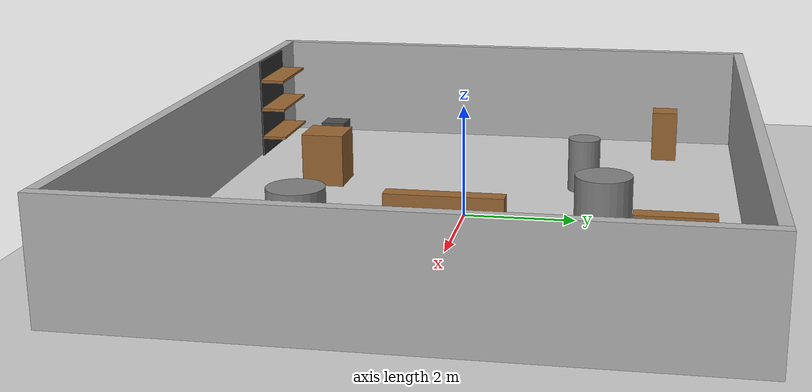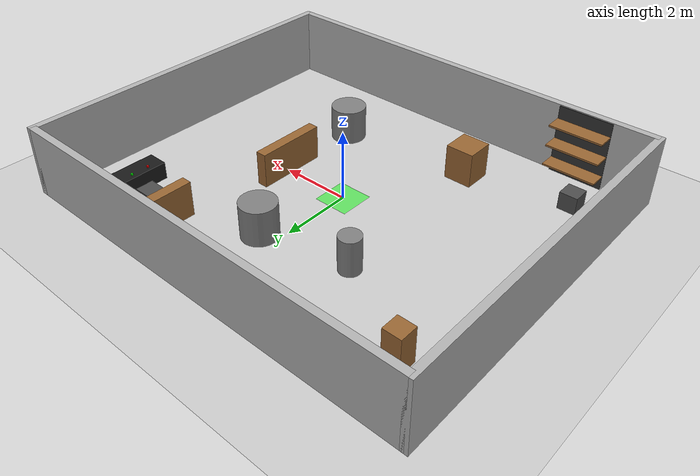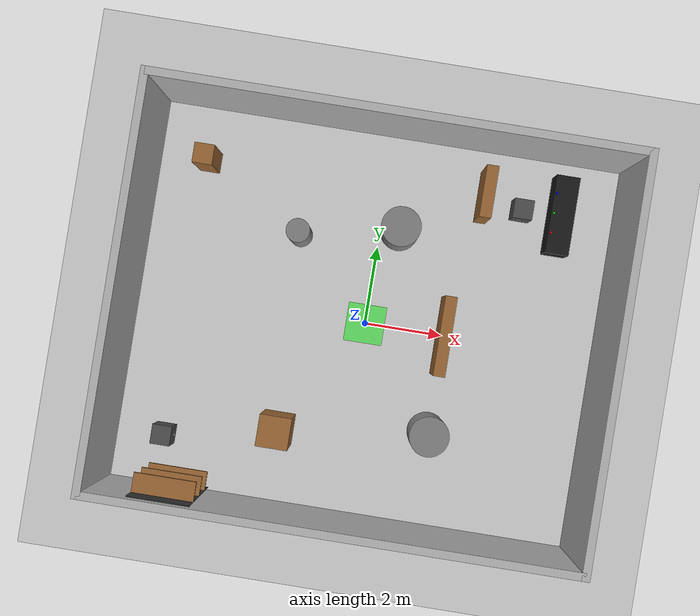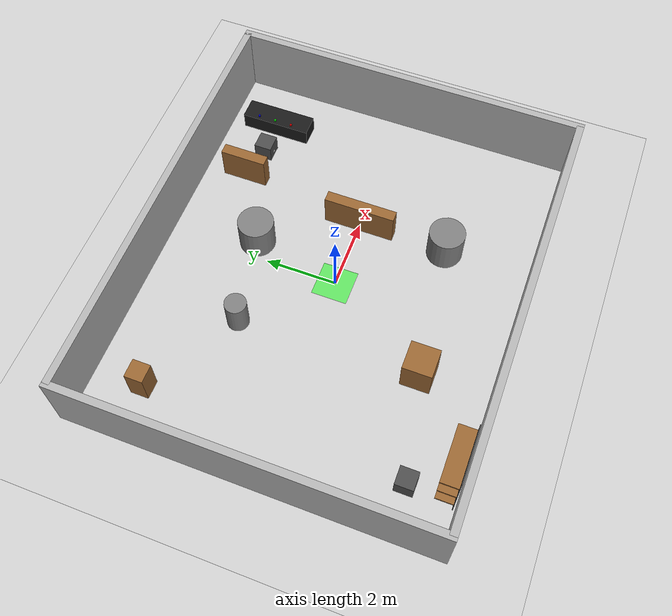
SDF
<?xml version="1.0" ?>
<sdf version="1.6">
  <world name="warehouse">

    <physics name='default_physics' default='0' type='ode'>
      <gravity>0 0 -9.8066</gravity>
      <ode>
        <solver>
          <type>quick</type>
          <iters>10</iters>
          <sor>1.3</sor>
          <use_dynamic_moi_rescaling>0</use_dynamic_moi_rescaling>
        </solver>
        <constraints>
          <cfm>0</cfm>
          <erp>0.2</erp>
          <contact_max_correcting_vel>100</contact_max_correcting_vel>
          <contact_surface_layer>0.001</contact_surface_layer>
        </constraints>
      </ode>
      <max_step_size>0.004</max_step_size>
      <real_time_factor>1</real_time_factor>
      <real_time_update_rate>250</real_time_update_rate>
      <magnetic_field>6.0e-6 2.3e-5 -4.2e-5</magnetic_field>
    </physics>

    <light type="directional" name="sun">
      <cast_shadows>true</cast_shadows>
      <pose>0 0 10 0 0 0</pose>
      <diffuse>0.8 0.8 0.8 1</diffuse>
      <specular>0.2 0.2 0.2 1</specular>
      <attenuation>
        <range>1000</range>
        <constant>0.9</constant>
        <linear>0.01</linear>
        <quadratic>0.001</quadratic>
      </attenuation>
      <direction>-0.5 0.1 -0.9</direction>
    </light>

    <model name="ground_plane">
      <static>true</static>
      <link name="link">
        <collision name="collision">
          <geometry>
            <plane>
              <normal>0 0 1</normal>
              <size>100 100</size>
            </plane>
          </geometry>
        </collision>
        <visual name="visual">
          <geometry>
            <plane>
              <normal>0 0 1</normal>
              <size>100 100</size>
            </plane>
          </geometry>
          <material>
            <ambient>0.8 0.8 0.8 1</ambient>
            <diffuse>0.8 0.8 0.8 1</diffuse>
            <specular>0.8 0.8 0.8 1</specular>
          </material>
        </visual>
      </link>
    </model>

    <model name="delivery_zone">
      <static>true</static>
      <pose>0 0 0.001 0 0 0</pose>
      <link name="link">
        <visual name="visual">
          <geometry>
            <plane>
              <normal>0 0 1</normal>
              <size>1.0 1.0</size> </plane>
          </geometry>
          <material>
            <ambient>0 1 0 0.5</ambient>
            <diffuse>0 1 0 0.5</diffuse>
            <emissive>0 1 0 0.5</emissive>
          </material>
        </visual>
      </link>
    </model>

    <model name="iiwa_base">
      <static>true</static>
      <pose>3.5 3.5 0.25 0 0 0</pose>
      <link name="link">
        <collision name="collision">
          <geometry><box><size>0.5 0.5 0.5</size></box></geometry>
        </collision>
        <visual name="visual">
          <geometry><box><size>0.5 0.5 0.5</size></box></geometry>
          <material>
            <ambient>0.3 0.3 0.3 1</ambient>
            <diffuse>0.3 0.3 0.3 1</diffuse>
          </material>
        </visual>
      </link>
    </model>

    <model name="aruco_tag">
      <static>true</static>
      <pose>3.5 3.249 0.15 1.5707 0 0</pose>
      <include>
        <uri>model://arucotag</uri>
      </include>
    </model>

    <model name="conveyor_belt">
      <static>true</static>
      <pose>4.5 3.5 0.25 0 0 1.5708</pose>
      <link name="link">
        <collision name="collision">
          <geometry><box><size>2.0 0.6 0.5</size></box></geometry>
        </collision>
        <visual name="visual">
          <geometry><box><size>2.0 0.6 0.5</size></box></geometry>
          <material>
            <ambient>0.1 0.1 0.1 1</ambient>
            <diffuse>0.1 0.1 0.1 1</diffuse>
          </material>
        </visual>
      </link>
    </model>

    <model name="box_red">
      <pose>4.25 3.0 0.6 0 0 0</pose>
      <link name="link">
        <inertial>
          <mass>0.2</mass>
          <inertia><ixx>0.001</ixx><iyy>0.001</iyy><izz>0.001</izz></inertia>
        </inertial>
        <collision name="collision">
          <geometry><box><size>0.05 0.05 0.05</size></box></geometry>
          <surface><friction><ode><mu>100.0</mu><mu2>100.0</mu2></ode></friction></surface>
        </collision>
        <visual name="visual">
          <geometry><box><size>0.05 0.05 0.05</size></box></geometry>
          <material><ambient>1 0 0 1</ambient><diffuse>1 0 0 1</diffuse></material>
        </visual>
      </link>
    </model>

    <model name="box_green">
      <pose>4.25 3.5 0.6 0 0 0</pose>
      <link name="link">
        <inertial>
          <mass>0.2</mass>
          <inertia><ixx>0.001</ixx><iyy>0.001</iyy><izz>0.001</izz></inertia>
        </inertial>
        <collision name="collision">
          <geometry><box><size>0.05 0.05 0.05</size></box></geometry>
          <surface><friction><ode><mu>100.0</mu><mu2>100.0</mu2></ode></friction></surface>
        </collision>
        <visual name="visual">
          <geometry><box><size>0.05 0.05 0.05</size></box></geometry>
          <material><ambient>0 1 0 1</ambient><diffuse>0 1 0 1</diffuse></material>
        </visual>
      </link>
    </model>

    <model name="box_blue">
      <pose>4.25 4.0 0.6 0 0 0</pose>
      <link name="link">
        <inertial>
          <mass>0.2</mass>
          <inertia><ixx>0.001</ixx><iyy>0.001</iyy><izz>0.001</izz></inertia>
        </inertial>
        <collision name="collision">
          <geometry><box><size>0.05 0.05 0.05</size></box></geometry>
          <surface><friction><ode><mu>100.0</mu><mu2>100.0</mu2></ode></friction></surface>
        </collision>
        <visual name="visual">
          <geometry><box><size>0.05 0.05 0.05</size></box></geometry>
          <material><ambient>0 0 1 1</ambient><diffuse>0 0 1 1</diffuse></material>
        </visual>
      </link>
    </model>

    <model name="bookshelf">
      <static>true</static>
      <pose>-4.1 -4.6 0 0 0 1.5708</pose>
      <link name="link">

        <collision name="collision_back">
          <pose>-0.24 0 1.0 0 0 0</pose>
          <geometry><box><size>0.02 1.5 2.0</size></box></geometry>
        </collision>

        <collision name="collision_bottom">
          <pose>0 0 0.4 0 0 0</pose>
          <geometry><box><size>0.5 1.5 0.05</size></box></geometry>
        </collision>

        <collision name="collision_middle">
          <pose>0 0 1.0 0 0 0</pose>
          <geometry><box><size>0.5 1.5 0.05</size></box></geometry>
        </collision>

        <collision name="collision_top">
          <pose>0 0 1.6 0 0 0</pose>
          <geometry><box><size>0.5 1.5 0.05</size></box></geometry>
        </collision>

        <visual name="visual_back">
          <pose>-0.24 0 1.0 0 0 0</pose>
          <geometry><box><size>0.02 1.5 2.0</size></box></geometry>
          <material><ambient>0.2 0.2 0.2 1</ambient><diffuse>0.2 0.2 0.2 1</diffuse></material>
        </visual>

        <visual name="visual_bottom">
          <pose>0 0 0.4 0 0 0</pose>
          <geometry><box><size>0.5 1.5 0.05</size></box></geometry>
          <material><ambient>0.6 0.4 0.2 1</ambient><diffuse>0.6 0.4 0.2 1</diffuse></material>
        </visual>

        <visual name="visual_middle">
          <pose>0 0 1.0 0 0 0</pose>
          <geometry><box><size>0.5 1.5 0.05</size></box></geometry>
          <material><ambient>0.6 0.4 0.2 1</ambient><diffuse>0.6 0.4 0.2 1</diffuse></material>
        </visual>

        <visual name="visual_top">
          <pose>0 0 1.6 0 0 0</pose>
          <geometry><box><size>0.5 1.5 0.05</size></box></geometry>
          <material><ambient>0.6 0.4 0.2 1</ambient><diffuse>0.6 0.4 0.2 1</diffuse></material>
        </visual>

      </link>
    </model>

    <model name="iiwa_2_base">
      <static>true</static>
      <pose>-4.65 -3.6 0.25 0 0 0</pose>
      <link name="link">
        <collision name="collision">
          <geometry><box><size>0.5 0.5 0.5</size></box></geometry>
        </collision>
        <visual name="visual">
          <geometry><box><size>0.5 0.5 0.5</size></box></geometry>
          <material>
            <ambient>0.3 0.3 0.3 1</ambient>
            <diffuse>0.3 0.3 0.3 1</diffuse>
          </material>
        </visual>
      </link>
    </model>

    <model name="aruco_tag_shelf">
      <static>true</static>
      <pose>-4.399 -3.6 0.15 1.5708 0 1.5708</pose> <include>
        <uri>model://arucotag_201</uri> </include>
    </model>

    <model name="obstacle_wall_center">
      <static>true</static>
      <pose>2.0 0.0 0.5 0 0 1.5708</pose>
      <link name="link">
        <collision name="collision">
          <geometry><box><size>2.0 0.3 1</size></box></geometry>
        </collision>
        <visual name="visual">
          <geometry><box><size>2.0 0.3 1</size></box></geometry>
          <material>
            <ambient>0.6 0.4 0.2 1</ambient>
            <diffuse>0.6 0.4 0.2 1</diffuse>
          </material>
        </visual>
      </link>
    </model>

    <model name="obstacle_column_1">
      <static>true</static>
      <pose>2.0 -2.5 0.5 0 0 0</pose>
      <link name="link">
        <collision name="collision"><geometry><cylinder><radius>0.5</radius><length>1</length></cylinder></geometry></collision>
        <visual name="visual">
          <geometry><cylinder><radius>0.5</radius><length>1</length></cylinder></geometry>
          <material><ambient>0.5 0.5 0.5 1</ambient><diffuse>0.5 0.5 0.5 1</diffuse></material>
        </visual>
      </link>
    </model>

    <model name="obstacle_column_2">
      <static>true</static>
      <pose>0.5 2.5 0.5 0 0 0</pose>
      <link name="link">
        <collision name="collision"><geometry><cylinder><radius>0.5</radius><length>1</length></cylinder></geometry></collision>
        <visual name="visual">
          <geometry><cylinder><radius>0.5</radius><length>1</length></cylinder></geometry>
          <material><ambient>0.5 0.5 0.5 1</ambient><diffuse>0.5 0.5 0.5 1</diffuse></material>
        </visual>
      </link>
    </model>

    <model name="obstacle_box_2">
      <static>true</static>
      <pose>-1.8 -3.0 0.5 0 0 0</pose>
      <link name="link">
        <collision name="collision"><geometry><box><size>0.8 0.8 1</size></box></geometry></collision>
        <visual name="visual">
          <geometry><box><size>0.8 0.8 1</size></box></geometry>
          <material><ambient>0.6 0.4 0.2 1</ambient><diffuse>0.6 0.4 0.2 1</diffuse></material>
        </visual>
      </link>
    </model>

    <model name="obstacle_box_3">
      <static>true</static>
      <pose>-4.6 3.5 0.5 0 0 0</pose>
      <link name="link">
        <collision name="collision"><geometry><box><size>0.5 0.5 1</size></box></geometry></collision>
        <visual name="visual">
          <geometry><box><size>0.5 0.5 1</size></box></geometry>
          <material><ambient>0.6 0.4 0.2 1</ambient><diffuse>0.6 0.4 0.2 1</diffuse></material>
        </visual>
      </link>
    </model>

    <model name="obstacle_wall_production_guard">
      <static>true</static>
      <pose>2.5 3.7 0.5 0 0 0</pose>
      <link name="link">
        <collision name="collision">
          <geometry><box><size>0.3 1.3 1</size></box></geometry>
        </collision>
        <visual name="visual">
          <geometry><box><size>0.3 1.3 1</size></box></geometry>
          <material>
            <ambient>0.6 0.4 0.2 1</ambient>
            <diffuse>0.6 0.4 0.2 1</diffuse>
          </material>
        </visual>
      </link>
    </model>

    <model name="obstacle_column_3">
      <static>true</static>
      <pose>-2.0 2.0 0.5 0 0 0</pose>
      <link name="link">
        <collision name="collision"><geometry><cylinder><radius>0.3</radius><length>1</length></cylinder></geometry></collision>
        <visual name="visual">
          <geometry><cylinder><radius>0.3</radius><length>1</length></cylinder></geometry>
          <material><ambient>0.5 0.5 0.5 1</ambient><diffuse>0.5 0.5 0.5 1</diffuse></material>
        </visual>
      </link>
    </model>

    <model name="wall_north">
      <static>true</static>
      <pose>0 5 1 0 0 0</pose>
      <link name="link">
        <collision name="collision"><geometry><box><size>12 0.2 2</size></box></geometry></collision>
        <visual name="visual">
          <geometry><box><size>12 0.2 2</size></box></geometry>
          <material><ambient>0.7 0.7 0.7 1</ambient><diffuse>0.7 0.7 0.7 1</diffuse></material>
        </visual>
      </link>
    </model>

    <model name="wall_south">
      <static>true</static>
      <pose>0 -5 1 0 0 0</pose>
      <link name="link">
        <collision name="collision"><geometry><box><size>12 0.2 2</size></box></geometry></collision>
        <visual name="visual">
          <geometry><box><size>12 0.2 2</size></box></geometry>
          <material><ambient>0.7 0.7 0.7 1</ambient><diffuse>0.7 0.7 0.7 1</diffuse></material>
        </visual>
      </link>
    </model>

    <model name="wall_east">
      <static>true</static>
      <pose>6 0 1 0 0 0</pose>
      <link name="link">
        <collision name="collision"><geometry><box><size>0.2 10.2 2</size></box></geometry></collision>
        <visual name="visual">
          <geometry><box><size>0.2 10.2 2</size></box></geometry>
          <material><ambient>0.7 0.7 0.7 1</ambient><diffuse>0.7 0.7 0.7 1</diffuse></material>
        </visual>
      </link>
    </model>

    <model name="wall_west">
      <static>true</static>
      <pose>-6 0 1 0 0 0</pose>
      <link name="link">
        <collision name="collision"><geometry><box><size>0.2 10.2 2</size></box></geometry></collision>
        <visual name="visual">
          <geometry><box><size>0.2 10.2 2</size></box></geometry>
          <material><ambient>0.7 0.7 0.7 1</ambient><diffuse>0.7 0.7 0.7 1</diffuse></material>
        </visual>
      </link>
    </model>

    <plugin
      filename="gz-sim-physics-system"
      name="gz::sim::systems::Physics">
    </plugin>
    <plugin
      filename="gz-sim-user-commands-system"
      name="gz::sim::systems::UserCommands">
    </plugin>
    <plugin
      filename="gz-sim-scene-broadcaster-system"
      name="gz::sim::systems::SceneBroadcaster">
    </plugin>

  </world>
</sdf>

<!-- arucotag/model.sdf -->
<sdf version='1.9'>
  <model name='arucotag'>
    <static>true</static>
    <pose>0 0 0.001 0.0 0 0</pose>
    <link name='base'>
      <visual name='base_visual'>
        <geometry>
          <plane>
            <normal>0 0 1</normal>
            <size>0.1 0.1</size>
          </plane>
        </geometry>
        <material>
          <diffuse>1 1 1 1</diffuse>
          <specular>0.4 0.4 0.4 1</specular>
          <pbr>
            <metal>
              <albedo_map>model://arucotag/aruco-115.png</albedo_map>
            </metal>
          </pbr>
        </material>
      </visual>
    </link>
  </model>
</sdf>

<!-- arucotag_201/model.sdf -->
<sdf version='1.9'>
  <model name='arucotag_201'>
    <static>true</static>
    <pose>0 0 0.001 0.0 0 0</pose>
    <link name='base'>
      <visual name='base_visual'>
        <geometry>
          <plane>
            <normal>0 0 1</normal>
            <size>0.1 0.1</size>
          </plane>
        </geometry>
        <material>
          <diffuse>1 1 1 1</diffuse>
          <specular>0.4 0.4 0.4 1</specular>
          <pbr>
            <metal>
              <albedo_map>model://arucotag_201/aruco-201.png</albedo_map>
            </metal>
          </pbr>
        </material>
      </visual>
    </link>
  </model>
</sdf>
